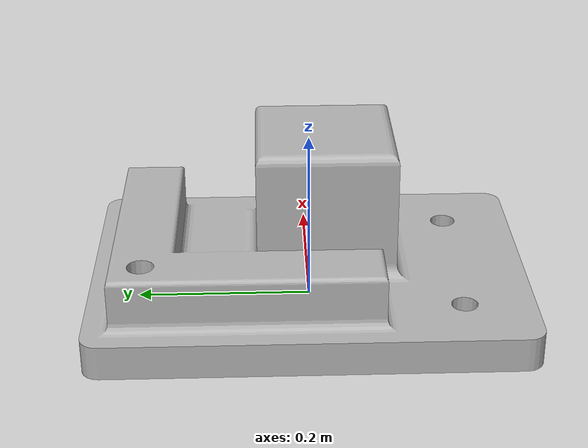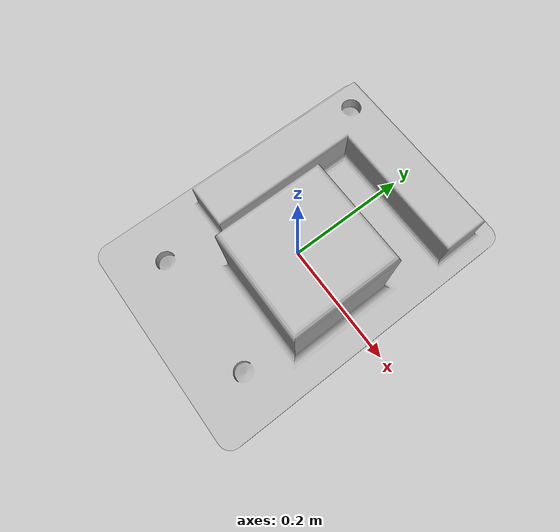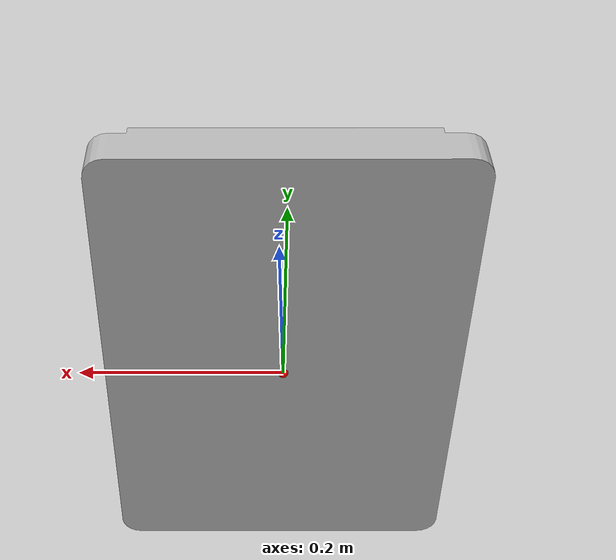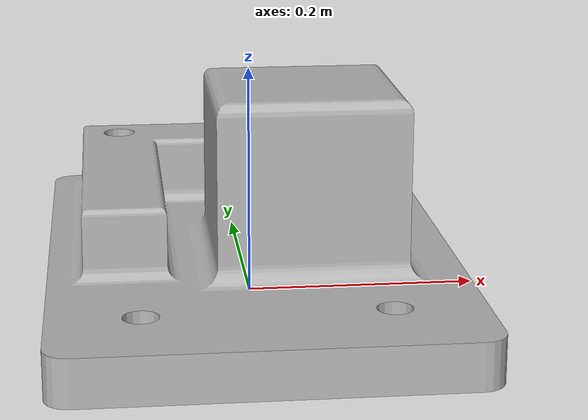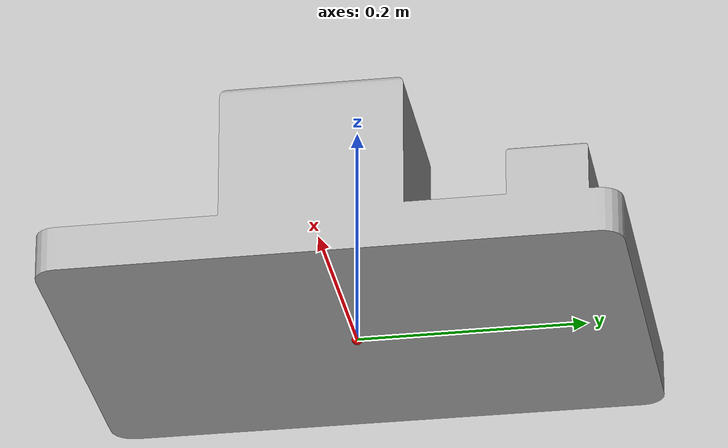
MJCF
<mujoco model="small_tool">
  <compiler angle="radian"/>
  <option timestep="0.01"/>

  <visual>
    <headlight diffuse="0.6 0.6 0.6" ambient="0.1 0.1 0.1" specular="0 0 0"/>
    <rgba haze="0.15 0.25 0.35 1"/>
    <global azimuth="120" elevation="-20"/>
  </visual>

  <asset>
    <mesh name="screw_plate_mesh" file="Screwing_plate.obj"/>
  </asset>

  <default>
    <geom condim="3" friction="1 0.5 0.01" solref="0.02 1" solimp="0.9 0.95 0.001"/>
  </default>

  <worldbody>
    <body name="screw_plate" pos="0 0 0">
      <geom type="mesh" mesh="screw_plate_mesh" rgba="0.7 0.7 0.7 1" contype="0" conaffinity="0" group="0"/>
      <!-- collision cylinder -->
      <geom type="cylinder" size="0.025 0.10" pos="0 0 0.10"
            rgba="0.2 0.8 0.2 1" mass="0.2"
            contype="1" conaffinity="1" group="3"/>
      <site name="mount_site" pos="0 0 0" size="0.005" rgba="1 0 0 1"/>
    </body>
  </worldbody>
</mujoco>
